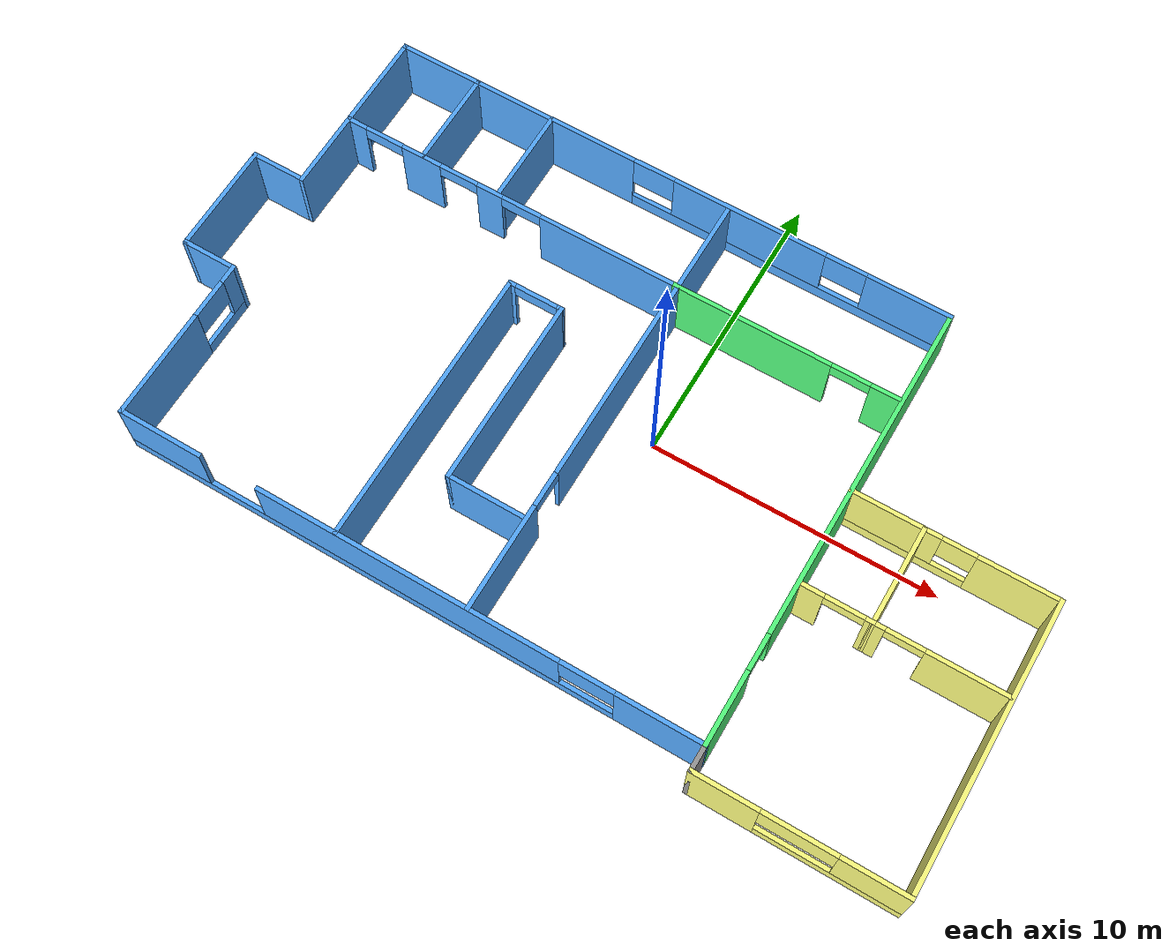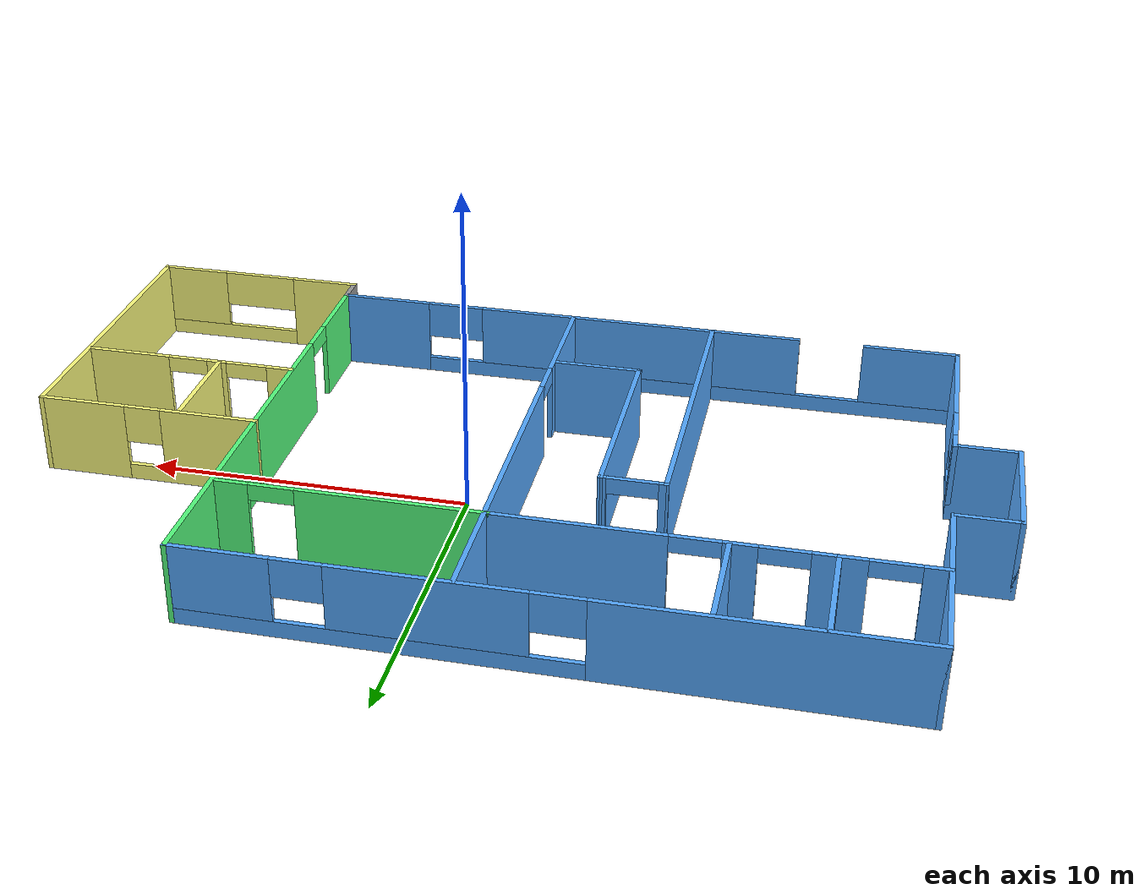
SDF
<?xml version='1.0'?>
<sdf version='1.6'>
  <model name='DetailQ802'>
    <pose frame=''>-1.3775 -0.7635 0 0 -0 0</pose>
    <link name='Wall_0'>
      <pose frame=''>-2.5 8.35 0 0 -0 0</pose>
      <visual name='Wall_0_Visual_0'>
        <pose frame=''>-5.73937 0 1.25 0 -0 0</pose>
        <geometry>
          <box>
            <size>9.02125 0.15 2.5</size>
          </box>
        </geometry>
        <material>
          <script>
            <uri>file://media/materials/scripts/gazebo.material</uri>
            <name>Gazebo/Grey</name>
          </script>
          <ambient>0.333333 0.666667 1 1</ambient>
        </material>
        <meta>
          <layer>0</layer>
        </meta>
      </visual>
      <collision name='Wall_0_Collision_0'>
        <geometry>
          <box>
            <size>9.02125 0.15 2.5</size>
          </box>
        </geometry>
        <pose frame=''>-5.73937 0 1.25 0 -0 0</pose>
      </collision>
      <visual name='Wall_0_Visual_1'>
        <pose frame=''>4.51063 0 0.25 0 -0 0</pose>
        <geometry>
          <box>
            <size>11.4787 0.15 0.5</size>
          </box>
        </geometry>
        <material>
          <script>
            <uri>file://media/materials/scripts/gazebo.material</uri>
            <name>Gazebo/Grey</name>
          </script>
          <ambient>0.333333 0.666667 1 1</ambient>
        </material>
        <meta>
          <layer>0</layer>
        </meta>
      </visual>
      <collision name='Wall_0_Collision_1'>
        <geometry>
          <box>
            <size>11.4787 0.15 0.5</size>
          </box>
        </geometry>
        <pose frame=''>4.51063 0 0.25 0 -0 0</pose>
      </collision>
      <visual name='Wall_0_Visual_2'>
        <pose frame=''>3.03238 0 1.5 0 -0 0</pose>
        <geometry>
          <box>
            <size>5.51925 0.15 2</size>
          </box>
        </geometry>
        <material>
          <script>
            <uri>file://media/materials/scripts/gazebo.material</uri>
            <name>Gazebo/Grey</name>
          </script>
          <ambient>0.333333 0.666667 1 1</ambient>
        </material>
        <meta>
          <layer>0</layer>
        </meta>
      </visual>
      <collision name='Wall_0_Collision_2'>
        <geometry>
          <box>
            <size>5.51925 0.15 2</size>
          </box>
        </geometry>
        <pose frame=''>3.03238 0 1.5 0 -0 0</pose>
      </collision>
      <visual name='Wall_0_Visual_3'>
        <pose frame=''>8.7545 0 1.5 0 -0 0</pose>
        <geometry>
          <box>
            <size>2.991 0.15 2</size>
          </box>
        </geometry>
        <material>
          <script>
            <uri>file://media/materials/scripts/gazebo.material</uri>
            <name>Gazebo/Grey</name>
          </script>
          <ambient>0.333333 0.666667 1 1</ambient>
        </material>
        <meta>
          <layer>0</layer>
        </meta>
      </visual>
      <collision name='Wall_0_Collision_3'>
        <geometry>
          <box>
            <size>2.991 0.15 2</size>
          </box>
        </geometry>
        <pose frame=''>8.7545 0 1.5 0 -0 0</pose>
      </collision>
      <visual name='Wall_0_Visual_4'>
        <pose frame=''>-0.478 0 1.9 0 -0 0</pose>
        <geometry>
          <box>
            <size>1.5015 0.15 1.2</size>
          </box>
        </geometry>
        <material>
          <script>
            <uri>file://media/materials/scripts/gazebo.material</uri>
            <name>Gazebo/Grey</name>
          </script>
          <ambient>0.333333 0.666667 1 1</ambient>
        </material>
        <meta>
          <layer>0</layer>
        </meta>
      </visual>
      <collision name='Wall_0_Collision_4'>
        <geometry>
          <box>
            <size>1.5015 0.15 1.2</size>
          </box>
        </geometry>
        <pose frame=''>-0.478 0 1.9 0 -0 0</pose>
      </collision>
      <visual name='Wall_0_Visual_5'>
        <pose frame=''>6.5255 0 1.9 0 -0 0</pose>
        <geometry>
          <box>
            <size>1.467 0.15 1.2</size>
          </box>
        </geometry>
        <material>
          <script>
            <uri>file://media/materials/scripts/gazebo.material</uri>
            <name>Gazebo/Grey</name>
          </script>
          <ambient>0.333333 0.666667 1 1</ambient>
        </material>
        <meta>
          <layer>0</layer>
        </meta>
      </visual>
      <collision name='Wall_0_Collision_5'>
        <geometry>
          <box>
            <size>1.467 0.15 1.2</size>
          </box>
        </geometry>
        <pose frame=''>6.5255 0 1.9 0 -0 0</pose>
      </collision>
    </link>
    <link name='Wall_11'>
      <collision name='Wall_11_Collision'>
        <geometry>
          <box>
            <size>1 0.15 2.5</size>
          </box>
        </geometry>
        <pose frame=''>0 0 1.25 0 -0 0</pose>
      </collision>
      <visual name='Wall_11_Visual'>
        <pose frame=''>0 0 1.25 0 -0 0</pose>
        <geometry>
          <box>
            <size>1 0.15 2.5</size>
          </box>
        </geometry>
        <material>
          <script>
            <uri>file://media/materials/scripts/gazebo.material</uri>
            <name>Gazebo/Grey</name>
          </script>
          <ambient>1 1 1 1</ambient>
        </material>
        <meta>
          <layer>0</layer>
        </meta>
      </visual>
      <pose frame=''>7.675 -7.925 0 0 0 -1.5708</pose>
    </link>
    <link name='Wall_12'>
      <pose frame=''>11.1 -8.35 0 0 -0 0</pose>
      <visual name='Wall_12_Visual_0'>
        <pose frame=''>-2.365 0 1.25 0 -0 0</pose>
        <geometry>
          <box>
            <size>2.27 0.15 2.5</size>
          </box>
        </geometry>
        <material>
          <script>
            <uri>file://media/materials/scripts/gazebo.material</uri>
            <name>Gazebo/Grey</name>
          </script>
          <ambient>1 1 0.498039 1</ambient>
        </material>
        <meta>
          <layer>0</layer>
        </meta>
      </visual>
      <collision name='Wall_12_Collision_0'>
        <geometry>
          <box>
            <size>2.27 0.15 2.5</size>
          </box>
        </geometry>
        <pose frame=''>-2.365 0 1.25 0 -0 0</pose>
      </collision>
      <visual name='Wall_12_Visual_1'>
        <pose frame=''>1.135 0 0.25 0 -0 0</pose>
        <geometry>
          <box>
            <size>4.73 0.15 0.5</size>
          </box>
        </geometry>
        <material>
          <script>
            <uri>file://media/materials/scripts/gazebo.material</uri>
            <name>Gazebo/Grey</name>
          </script>
          <ambient>1 1 0.498039 1</ambient>
        </material>
        <meta>
          <layer>0</layer>
        </meta>
      </visual>
      <collision name='Wall_12_Collision_1'>
        <geometry>
          <box>
            <size>4.73 0.15 0.5</size>
          </box>
        </geometry>
        <pose frame=''>1.135 0 0.25 0 -0 0</pose>
      </collision>
      <visual name='Wall_12_Visual_2'>
        <pose frame=''>2.363 0 1.5 0 -0 0</pose>
        <geometry>
          <box>
            <size>2.274 0.15 2</size>
          </box>
        </geometry>
        <material>
          <script>
            <uri>file://media/materials/scripts/gazebo.material</uri>
            <name>Gazebo/Grey</name>
          </script>
          <ambient>1 1 0.498039 1</ambient>
        </material>
        <meta>
          <layer>0</layer>
        </meta>
      </visual>
      <collision name='Wall_12_Collision_2'>
        <geometry>
          <box>
            <size>2.274 0.15 2</size>
          </box>
        </geometry>
        <pose frame=''>2.363 0 1.5 0 -0 0</pose>
      </collision>
      <visual name='Wall_12_Visual_3'>
        <pose frame=''>-0.002 0 1.9 0 -0 0</pose>
        <geometry>
          <box>
            <size>2.456 0.15 1.2</size>
          </box>
        </geometry>
        <material>
          <script>
            <uri>file://media/materials/scripts/gazebo.material</uri>
            <name>Gazebo/Grey</name>
          </script>
          <ambient>1 1 0.498039 1</ambient>
        </material>
        <meta>
          <layer>0</layer>
        </meta>
      </visual>
      <collision name='Wall_12_Collision_3'>
        <geometry>
          <box>
            <size>2.456 0.15 1.2</size>
          </box>
        </geometry>
        <pose frame=''>-0.002 0 1.9 0 -0 0</pose>
      </collision>
    </link>
    <link name='Wall_13'>
      <collision name='Wall_13_Collision'>
        <geometry>
          <box>
            <size>10 0.15 2.5</size>
          </box>
        </geometry>
        <pose frame=''>0 0 1.25 0 -0 0</pose>
      </collision>
      <visual name='Wall_13_Visual'>
        <pose frame=''>0 0 1.25 0 -0 0</pose>
        <geometry>
          <box>
            <size>10 0.15 2.5</size>
          </box>
        </geometry>
        <material>
          <script>
            <uri>file://media/materials/scripts/gazebo.material</uri>
            <name>Gazebo/Grey</name>
          </script>
          <ambient>1 1 0.498039 1</ambient>
        </material>
        <meta>
          <layer>0</layer>
        </meta>
      </visual>
      <pose frame=''>14.525 -3.425 0 0 -0 1.5708</pose>
    </link>
    <link name='Wall_14'>
      <pose frame=''>11.1 1.5 0 0 -0 3.14159</pose>
      <visual name='Wall_14_Visual_0'>
        <pose frame=''>-2.11575 0 1.25 0 -0 0</pose>
        <geometry>
          <box>
            <size>2.7685 0.15 2.5</size>
          </box>
        </geometry>
        <material>
          <script>
            <uri>file://media/materials/scripts/gazebo.material</uri>
            <name>Gazebo/Grey</name>
          </script>
          <ambient>1 1 0.498039 1</ambient>
        </material>
        <meta>
          <layer>0</layer>
        </meta>
      </visual>
      <collision name='Wall_14_Collision_0'>
        <geometry>
          <box>
            <size>2.7685 0.15 2.5</size>
          </box>
        </geometry>
        <pose frame=''>-2.11575 0 1.25 0 -0 0</pose>
      </collision>
      <visual name='Wall_14_Visual_1'>
        <pose frame=''>1.38425 0 0.25 0 -0 0</pose>
        <geometry>
          <box>
            <size>4.2315 0.15 0.5</size>
          </box>
        </geometry>
        <material>
          <script>
            <uri>file://media/materials/scripts/gazebo.material</uri>
            <name>Gazebo/Grey</name>
          </script>
          <ambient>1 1 0.498039 1</ambient>
        </material>
        <meta>
          <layer>0</layer>
        </meta>
      </visual>
      <collision name='Wall_14_Collision_1'>
        <geometry>
          <box>
            <size>4.2315 0.15 0.5</size>
          </box>
        </geometry>
        <pose frame=''>1.38425 0 0.25 0 -0 0</pose>
      </collision>
      <visual name='Wall_14_Visual_2'>
        <pose frame=''>1.95675 0 1.5 0 -0 0</pose>
        <geometry>
          <box>
            <size>3.0865 0.15 2</size>
          </box>
        </geometry>
        <material>
          <script>
            <uri>file://media/materials/scripts/gazebo.material</uri>
            <name>Gazebo/Grey</name>
          </script>
          <ambient>1 1 0.498039 1</ambient>
        </material>
        <meta>
          <layer>0</layer>
        </meta>
      </visual>
      <collision name='Wall_14_Collision_2'>
        <geometry>
          <box>
            <size>3.0865 0.15 2</size>
          </box>
        </geometry>
        <pose frame=''>1.95675 0 1.5 0 -0 0</pose>
      </collision>
      <visual name='Wall_14_Visual_3'>
        <pose frame=''>-0.159 0 1.9 0 -0 0</pose>
        <geometry>
          <box>
            <size>1.145 0.15 1.2</size>
          </box>
        </geometry>
        <material>
          <script>
            <uri>file://media/materials/scripts/gazebo.material</uri>
            <name>Gazebo/Grey</name>
          </script>
          <ambient>1 1 0.498039 1</ambient>
        </material>
        <meta>
          <layer>0</layer>
        </meta>
      </visual>
      <collision name='Wall_14_Collision_3'>
        <geometry>
          <box>
            <size>1.145 0.15 1.2</size>
          </box>
        </geometry>
        <pose frame=''>-0.159 0 1.9 0 -0 0</pose>
      </collision>
    </link>
    <link name='Wall_25'>
      <pose frame=''>-0.2065 0.421 0 0 0 -1.5708</pose>
      <visual name='Wall_25_Visual_0'>
        <pose frame=''>-2.53238 0 1.25 0 -0 0</pose>
        <geometry>
          <box>
            <size>10.9352 0.15 2.5</size>
          </box>
        </geometry>
        <material>
          <script>
            <uri>file://media/materials/scripts/gazebo.material</uri>
            <name>Gazebo/Grey</name>
          </script>
          <ambient>0.333333 0.666667 1 1</ambient>
        </material>
        <meta>
          <layer>0</layer>
        </meta>
      </visual>
      <collision name='Wall_25_Collision_0'>
        <geometry>
          <box>
            <size>10.9352 0.15 2.5</size>
          </box>
        </geometry>
        <pose frame=''>-2.53238 0 1.25 0 -0 0</pose>
      </collision>
      <visual name='Wall_25_Visual_1'>
        <pose frame=''>6.08437 0 1.25 0 -0 0</pose>
        <geometry>
          <box>
            <size>3.83125 0.15 2.5</size>
          </box>
        </geometry>
        <material>
          <script>
            <uri>file://media/materials/scripts/gazebo.material</uri>
            <name>Gazebo/Grey</name>
          </script>
          <ambient>0.333333 0.666667 1 1</ambient>
        </material>
        <meta>
          <layer>0</layer>
        </meta>
      </visual>
      <collision name='Wall_25_Collision_1'>
        <geometry>
          <box>
            <size>3.83125 0.15 2.5</size>
          </box>
        </geometry>
        <pose frame=''>6.08437 0 1.25 0 -0 0</pose>
      </collision>
      <visual name='Wall_25_Visual_2'>
        <pose frame=''>3.552 0 2.25 0 -0 0</pose>
        <geometry>
          <box>
            <size>1.2335 0.15 0.5</size>
          </box>
        </geometry>
        <material>
          <script>
            <uri>file://media/materials/scripts/gazebo.material</uri>
            <name>Gazebo/Grey</name>
          </script>
          <ambient>0.333333 0.666667 1 1</ambient>
        </material>
        <meta>
          <layer>0</layer>
        </meta>
      </visual>
      <collision name='Wall_25_Collision_2'>
        <geometry>
          <box>
            <size>1.2335 0.15 0.5</size>
          </box>
        </geometry>
        <pose frame=''>3.552 0 2.25 0 -0 0</pose>
      </collision>
    </link>
    <link name='Wall_3'>
      <pose frame=''>7.675 0.425 0 0 0 -1.5708</pose>
      <visual name='Wall_3_Visual_0'>
        <pose frame=''>-1.92741 0 1.25 0 -0 0</pose>
        <geometry>
          <box>
            <size>12.1452 0.15 2.5</size>
          </box>
        </geometry>
        <material>
          <script>
            <uri>file://media/materials/scripts/gazebo.material</uri>
            <name>Gazebo/Grey</name>
          </script>
          <ambient>0.333333 1 0.498039 1</ambient>
        </material>
        <meta>
          <layer>0</layer>
        </meta>
      </visual>
      <collision name='Wall_3_Collision_0'>
        <geometry>
          <box>
            <size>12.1452 0.15 2.5</size>
          </box>
        </geometry>
        <pose frame=''>-1.92741 0 1.25 0 -0 0</pose>
      </collision>
      <visual name='Wall_3_Visual_1'>
        <pose frame=''>6.70452 0 1.25 0 -0 0</pose>
        <geometry>
          <box>
            <size>2.59097 0.15 2.5</size>
          </box>
        </geometry>
        <material>
          <script>
            <uri>file://media/materials/scripts/gazebo.material</uri>
            <name>Gazebo/Grey</name>
          </script>
          <ambient>0.333333 1 0.498039 1</ambient>
        </material>
        <meta>
          <layer>0</layer>
        </meta>
      </visual>
      <collision name='Wall_3_Collision_1'>
        <geometry>
          <box>
            <size>2.59097 0.15 2.5</size>
          </box>
        </geometry>
        <pose frame=''>6.70452 0 1.25 0 -0 0</pose>
      </collision>
      <visual name='Wall_3_Visual_2'>
        <pose frame=''>4.7771 0 2.25 0 -0 0</pose>
        <geometry>
          <box>
            <size>1.26386 0.15 0.5</size>
          </box>
        </geometry>
        <material>
          <script>
            <uri>file://media/materials/scripts/gazebo.material</uri>
            <name>Gazebo/Grey</name>
          </script>
          <ambient>0.333333 1 0.498039 1</ambient>
        </material>
        <meta>
          <layer>0</layer>
        </meta>
      </visual>
      <collision name='Wall_3_Collision_2'>
        <geometry>
          <box>
            <size>1.26386 0.15 0.5</size>
          </box>
        </geometry>
        <pose frame=''>4.7771 0 2.25 0 -0 0</pose>
      </collision>
    </link>
    <link name='Wall_31'>
      <collision name='Wall_31_Collision'>
        <geometry>
          <box>
            <size>3.5 0.15 2.5</size>
          </box>
        </geometry>
        <pose frame=''>0 0 1.25 0 -0 0</pose>
      </collision>
      <visual name='Wall_31_Visual'>
        <pose frame=''>0 0 1.25 0 -0 0</pose>
        <geometry>
          <box>
            <size>3.5 0.15 2.5</size>
          </box>
        </geometry>
        <material>
          <script>
            <uri>file://media/materials/scripts/gazebo.material</uri>
            <name>Gazebo/Grey</name>
          </script>
          <ambient>0.333333 0.666667 1 1</ambient>
        </material>
        <meta>
          <layer>0</layer>
        </meta>
      </visual>
      <pose frame=''>-9.786 6.6365 0 0 0 -1.5708</pose>
    </link>
    <link name='Wall_33'>
      <pose frame=''>-6.4745 4.942 0 0 -0 0</pose>
      <visual name='Wall_33_Visual_0'>
        <pose frame=''>-5.87113 0 1.25 0 -0 0</pose>
        <geometry>
          <box>
            <size>0.757751 0.15 2.5</size>
          </box>
        </geometry>
        <material>
          <script>
            <uri>file://media/materials/scripts/gazebo.material</uri>
            <name>Gazebo/Grey</name>
          </script>
          <ambient>0.333333 0.666667 1 1</ambient>
        </material>
        <meta>
          <layer>0</layer>
        </meta>
      </visual>
      <collision name='Wall_33_Collision_0'>
        <geometry>
          <box>
            <size>0.757751 0.15 2.5</size>
          </box>
        </geometry>
        <pose frame=''>-5.87113 0 1.25 0 -0 0</pose>
      </collision>
      <visual name='Wall_33_Visual_1'>
        <pose frame=''>-3.34312 0 1.25 0 -0 0</pose>
        <geometry>
          <box>
            <size>1.48625 0.15 2.5</size>
          </box>
        </geometry>
        <material>
          <script>
            <uri>file://media/materials/scripts/gazebo.material</uri>
            <name>Gazebo/Grey</name>
          </script>
          <ambient>0.333333 0.666667 1 1</ambient>
        </material>
        <meta>
          <layer>0</layer>
        </meta>
      </visual>
      <collision name='Wall_33_Collision_1'>
        <geometry>
          <box>
            <size>1.48625 0.15 2.5</size>
          </box>
        </geometry>
        <pose frame=''>-3.34312 0 1.25 0 -0 0</pose>
      </collision>
      <visual name='Wall_33_Visual_2'>
        <pose frame=''>-0.715375 0 1.25 0 -0 0</pose>
        <geometry>
          <box>
            <size>0.957249 0.15 2.5</size>
          </box>
        </geometry>
        <material>
          <script>
            <uri>file://media/materials/scripts/gazebo.material</uri>
            <name>Gazebo/Grey</name>
          </script>
          <ambient>0.333333 0.666667 1 1</ambient>
        </material>
        <meta>
          <layer>0</layer>
        </meta>
      </visual>
      <collision name='Wall_33_Collision_2'>
        <geometry>
          <box>
            <size>0.957249 0.15 2.5</size>
          </box>
        </geometry>
        <pose frame=''>-0.715375 0 1.25 0 -0 0</pose>
      </collision>
      <visual name='Wall_33_Visual_3'>
        <pose frame=''>3.72688 0 1.25 0 -0 0</pose>
        <geometry>
          <box>
            <size>5.04625 0.15 2.5</size>
          </box>
        </geometry>
        <material>
          <script>
            <uri>file://media/materials/scripts/gazebo.material</uri>
            <name>Gazebo/Grey</name>
          </script>
          <ambient>0.333333 0.666667 1 1</ambient>
        </material>
        <meta>
          <layer>0</layer>
        </meta>
      </visual>
      <collision name='Wall_33_Collision_3'>
        <geometry>
          <box>
            <size>5.04625 0.15 2.5</size>
          </box>
        </geometry>
        <pose frame=''>3.72688 0 1.25 0 -0 0</pose>
      </collision>
      <visual name='Wall_33_Visual_4'>
        <pose frame=''>-4.78925 0 2.25 0 -0 0</pose>
        <geometry>
          <box>
            <size>1.406 0.15 0.5</size>
          </box>
        </geometry>
        <material>
          <script>
            <uri>file://media/materials/scripts/gazebo.material</uri>
            <name>Gazebo/Grey</name>
          </script>
          <ambient>0.333333 0.666667 1 1</ambient>
        </material>
        <meta>
          <layer>0</layer>
        </meta>
      </visual>
      <collision name='Wall_33_Collision_4'>
        <geometry>
          <box>
            <size>1.406 0.15 0.5</size>
          </box>
        </geometry>
        <pose frame=''>-4.78925 0 2.25 0 -0 0</pose>
      </collision>
      <visual name='Wall_33_Visual_5'>
        <pose frame=''>-1.897 0 2.25 0 -0 0</pose>
        <geometry>
          <box>
            <size>1.406 0.15 0.5</size>
          </box>
        </geometry>
        <material>
          <script>
            <uri>file://media/materials/scripts/gazebo.material</uri>
            <name>Gazebo/Grey</name>
          </script>
          <ambient>0.333333 0.666667 1 1</ambient>
        </material>
        <meta>
          <layer>0</layer>
        </meta>
      </visual>
      <collision name='Wall_33_Collision_5'>
        <geometry>
          <box>
            <size>1.406 0.15 0.5</size>
          </box>
        </geometry>
        <pose frame=''>-1.897 0 2.25 0 -0 0</pose>
      </collision>
      <visual name='Wall_33_Visual_6'>
        <pose frame=''>0.4835 0 2.25 0 -0 0</pose>
        <geometry>
          <box>
            <size>1.4405 0.15 0.5</size>
          </box>
        </geometry>
        <material>
          <script>
            <uri>file://media/materials/scripts/gazebo.material</uri>
            <name>Gazebo/Grey</name>
          </script>
          <ambient>0.333333 0.666667 1 1</ambient>
        </material>
        <meta>
          <layer>0</layer>
        </meta>
      </visual>
      <collision name='Wall_33_Collision_6'>
        <geometry>
          <box>
            <size>1.4405 0.15 0.5</size>
          </box>
        </geometry>
        <pose frame=''>0.4835 0 2.25 0 -0 0</pose>
      </collision>
    </link>
    <link name='Wall_37'>
      <collision name='Wall_37_Collision'>
        <geometry>
          <box>
            <size>3.5 0.15 2.5</size>
          </box>
        </geometry>
        <pose frame=''>0 0 1.25 0 -0 0</pose>
      </collision>
      <visual name='Wall_37_Visual'>
        <pose frame=''>0 0 1.25 0 -0 0</pose>
        <geometry>
          <box>
            <size>3.5 0.15 2.5</size>
          </box>
        </geometry>
        <material>
          <script>
            <uri>file://media/materials/scripts/gazebo.material</uri>
            <name>Gazebo/Grey</name>
          </script>
          <ambient>0.333333 0.666667 1 1</ambient>
        </material>
        <meta>
          <layer>0</layer>
        </meta>
      </visual>
      <pose frame=''>-6.8995 6.648 0 0 0 -1.5708</pose>
    </link>
    <link name='Wall_39'>
      <pose frame=''>3.6255 4.942 0 0 -0 0</pose>
      <visual name='Wall_39_Visual_0'>
        <pose frame=''>-1.19125 0 1.25 0 -0 0</pose>
        <geometry>
          <box>
            <size>5.6175 0.15 2.5</size>
          </box>
        </geometry>
        <material>
          <script>
            <uri>file://media/materials/scripts/gazebo.material</uri>
            <name>Gazebo/Grey</name>
          </script>
          <ambient>0.333333 1 0.498039 1</ambient>
        </material>
        <meta>
          <layer>0</layer>
        </meta>
      </visual>
      <collision name='Wall_39_Collision_0'>
        <geometry>
          <box>
            <size>5.6175 0.15 2.5</size>
          </box>
        </geometry>
        <pose frame=''>-1.19125 0 1.25 0 -0 0</pose>
      </collision>
      <visual name='Wall_39_Visual_1'>
        <pose frame=''>3.48875 0 1.25 0 -0 0</pose>
        <geometry>
          <box>
            <size>1.0225 0.15 2.5</size>
          </box>
        </geometry>
        <material>
          <script>
            <uri>file://media/materials/scripts/gazebo.material</uri>
            <name>Gazebo/Grey</name>
          </script>
          <ambient>0.333333 1 0.498039 1</ambient>
        </material>
        <meta>
          <layer>0</layer>
        </meta>
      </visual>
      <collision name='Wall_39_Collision_1'>
        <geometry>
          <box>
            <size>1.0225 0.15 2.5</size>
          </box>
        </geometry>
        <pose frame=''>3.48875 0 1.25 0 -0 0</pose>
      </collision>
      <visual name='Wall_39_Visual_2'>
        <pose frame=''>2.2975 0 2.25 0 -0 0</pose>
        <geometry>
          <box>
            <size>1.36 0.15 0.5</size>
          </box>
        </geometry>
        <material>
          <script>
            <uri>file://media/materials/scripts/gazebo.material</uri>
            <name>Gazebo/Grey</name>
          </script>
          <ambient>0.333333 1 0.498039 1</ambient>
        </material>
        <meta>
          <layer>0</layer>
        </meta>
      </visual>
      <collision name='Wall_39_Collision_2'>
        <geometry>
          <box>
            <size>1.36 0.15 0.5</size>
          </box>
        </geometry>
        <pose frame=''>2.2975 0 2.25 0 -0 0</pose>
      </collision>
    </link>
    <link name='Wall_4'>
      <pose frame=''>-2.5 -7.50575 0 0 0 -3.14103</pose>
      <visual name='Wall_4_Visual_0'>
        <pose frame=''>-8.7479 0 1.25 0 -0 0</pose>
        <geometry>
          <box>
            <size>3.00459 0.15 2.5</size>
          </box>
        </geometry>
        <material>
          <script>
            <uri>file://media/materials/scripts/gazebo.material</uri>
            <name>Gazebo/Grey</name>
          </script>
          <ambient>0.333333 0.666667 1 1</ambient>
        </material>
        <meta>
          <layer>0</layer>
        </meta>
      </visual>
      <collision name='Wall_4_Collision_0'>
        <geometry>
          <box>
            <size>3.00459 0.15 2.5</size>
          </box>
        </geometry>
        <pose frame=''>-8.7479 0 1.25 0 -0 0</pose>
      </collision>
      <visual name='Wall_4_Visual_1'>
        <pose frame=''>1.50229 0 0.25 0 -0 0</pose>
        <geometry>
          <box>
            <size>17.4958 0.15 0.5</size>
          </box>
        </geometry>
        <material>
          <script>
            <uri>file://media/materials/scripts/gazebo.material</uri>
            <name>Gazebo/Grey</name>
          </script>
          <ambient>0.333333 0.666667 1 1</ambient>
        </material>
        <meta>
          <layer>0</layer>
        </meta>
      </visual>
      <collision name='Wall_4_Collision_1'>
        <geometry>
          <box>
            <size>17.4958 0.15 0.5</size>
          </box>
        </geometry>
        <pose frame=''>1.50229 0 0.25 0 -0 0</pose>
      </collision>
      <visual name='Wall_4_Visual_2'>
        <pose frame=''>-0.109419 0 1.5 0 -0 0</pose>
        <geometry>
          <box>
            <size>10.579 0.15 2</size>
          </box>
        </geometry>
        <material>
          <script>
            <uri>file://media/materials/scripts/gazebo.material</uri>
            <name>Gazebo/Grey</name>
          </script>
          <ambient>0.333333 0.666667 1 1</ambient>
        </material>
        <meta>
          <layer>0</layer>
        </meta>
      </visual>
      <collision name='Wall_4_Collision_2'>
        <geometry>
          <box>
            <size>10.579 0.15 2</size>
          </box>
        </geometry>
        <pose frame=''>-0.109419 0 1.5 0 -0 0</pose>
      </collision>
      <visual name='Wall_4_Visual_3'>
        <pose frame=''>8.72814 0 1.5 0 -0 0</pose>
        <geometry>
          <box>
            <size>3.04411 0.15 2</size>
          </box>
        </geometry>
        <material>
          <script>
            <uri>file://media/materials/scripts/gazebo.material</uri>
            <name>Gazebo/Grey</name>
          </script>
          <ambient>0.333333 0.666667 1 1</ambient>
        </material>
        <meta>
          <layer>0</layer>
        </meta>
      </visual>
      <collision name='Wall_4_Collision_3'>
        <geometry>
          <box>
            <size>3.04411 0.15 2</size>
          </box>
        </geometry>
        <pose frame=''>8.72814 0 1.5 0 -0 0</pose>
      </collision>
      <visual name='Wall_4_Visual_4'>
        <pose frame=''>-6.32226 0 1.9 0 -0 0</pose>
        <geometry>
          <box>
            <size>1.8467 0.15 1.2</size>
          </box>
        </geometry>
        <material>
          <script>
            <uri>file://media/materials/scripts/gazebo.material</uri>
            <name>Gazebo/Grey</name>
          </script>
          <ambient>0.333333 0.666667 1 1</ambient>
        </material>
        <meta>
          <layer>0</layer>
        </meta>
      </visual>
      <collision name='Wall_4_Collision_4'>
        <geometry>
          <box>
            <size>1.8467 0.15 1.2</size>
          </box>
        </geometry>
        <pose frame=''>-6.32226 0 1.9 0 -0 0</pose>
      </collision>
      <visual name='Wall_4_Visual_5'>
        <pose frame=''>5.18008 0 1.9 0 -0 0</pose>
        <geometry>
          <box>
            <size>0 0.15 1.2</size>
          </box>
        </geometry>
        <material>
          <script>
            <uri>file://media/materials/scripts/gazebo.material</uri>
            <name>Gazebo/Grey</name>
          </script>
          <ambient>0.333333 0.666667 1 1</ambient>
        </material>
        <meta>
          <layer>0</layer>
        </meta>
      </visual>
      <collision name='Wall_4_Collision_5'>
        <geometry>
          <box>
            <size>0 0.15 1.2</size>
          </box>
        </geometry>
        <pose frame=''>5.18008 0 1.9 0 -0 0</pose>
      </collision>
    </link>
    <link name='Wall_45'>
      <collision name='Wall_45_Collision'>
        <geometry>
          <box>
            <size>10 0.15 2.5</size>
          </box>
        </geometry>
        <pose frame=''>0 0 1.25 0 -0 0</pose>
      </collision>
      <visual name='Wall_45_Visual'>
        <pose frame=''>0 0 1.25 0 -0 0</pose>
        <geometry>
          <box>
            <size>10 0.15 2.5</size>
          </box>
        </geometry>
        <material>
          <script>
            <uri>file://media/materials/scripts/gazebo.material</uri>
            <name>Gazebo/Grey</name>
          </script>
          <ambient>0.333333 0.666667 1 1</ambient>
        </material>
        <meta>
          <layer>0</layer>
        </meta>
      </visual>
      <pose frame=''>-4.8295 -2.5645 0 0 -0 1.5708</pose>
    </link>
    <link name='Wall_47'>
      <collision name='Wall_47_Collision'>
        <geometry>
          <box>
            <size>6.75 0.15 2.5</size>
          </box>
        </geometry>
        <pose frame=''>0 0 1.25 0 -0 0</pose>
      </collision>
      <visual name='Wall_47_Visual'>
        <pose frame=''>0 0 1.25 0 -0 0</pose>
        <geometry>
          <box>
            <size>6.75 0.15 2.5</size>
          </box>
        </geometry>
        <material>
          <script>
            <uri>file://media/materials/scripts/gazebo.material</uri>
            <name>Gazebo/Grey</name>
          </script>
          <ambient>0.333333 0.666667 1 1</ambient>
        </material>
        <meta>
          <layer>0</layer>
        </meta>
      </visual>
      <pose frame=''>-2.9435 -0.934 0 0 0 -1.5708</pose>
    </link>
    <link name='Wall_5'>
      <pose frame=''>-12.675 -4.575 0 0 -0 1.5708</pose>
      <visual name='Wall_5_Visual_0'>
        <pose frame=''>-1.04412 0 1.25 0 -0 0</pose>
        <geometry>
          <box>
            <size>3.91177 0.15 2.5</size>
          </box>
        </geometry>
        <material>
          <script>
            <uri>file://media/materials/scripts/gazebo.material</uri>
            <name>Gazebo/Grey</name>
          </script>
          <ambient>0.333333 0.666667 1 1</ambient>
        </material>
        <meta>
          <layer>0</layer>
        </meta>
      </visual>
      <collision name='Wall_5_Collision_0'>
        <geometry>
          <box>
            <size>3.91177 0.15 2.5</size>
          </box>
        </geometry>
        <pose frame=''>-1.04412 0 1.25 0 -0 0</pose>
      </collision>
      <visual name='Wall_5_Visual_1'>
        <pose frame=''>1.95588 0 0.25 0 -0 0</pose>
        <geometry>
          <box>
            <size>2.08823 0.15 0.5</size>
          </box>
        </geometry>
        <material>
          <script>
            <uri>file://media/materials/scripts/gazebo.material</uri>
            <name>Gazebo/Grey</name>
          </script>
          <ambient>0.333333 0.666667 1 1</ambient>
        </material>
        <meta>
          <layer>0</layer>
        </meta>
      </visual>
      <collision name='Wall_5_Collision_1'>
        <geometry>
          <box>
            <size>2.08823 0.15 0.5</size>
          </box>
        </geometry>
        <pose frame=''>1.95588 0 0.25 0 -0 0</pose>
      </collision>
      <visual name='Wall_5_Visual_2'>
        <pose frame=''>2.64912 0 1.5 0 -0 0</pose>
        <geometry>
          <box>
            <size>0.701768 0.15 2</size>
          </box>
        </geometry>
        <material>
          <script>
            <uri>file://media/materials/scripts/gazebo.material</uri>
            <name>Gazebo/Grey</name>
          </script>
          <ambient>0.333333 0.666667 1 1</ambient>
        </material>
        <meta>
          <layer>0</layer>
        </meta>
      </visual>
      <collision name='Wall_5_Collision_2'>
        <geometry>
          <box>
            <size>0.701768 0.15 2</size>
          </box>
        </geometry>
        <pose frame=''>2.64912 0 1.5 0 -0 0</pose>
      </collision>
      <visual name='Wall_5_Visual_3'>
        <pose frame=''>1.605 0 1.9 0 -0 0</pose>
        <geometry>
          <box>
            <size>1.38646 0.15 1.2</size>
          </box>
        </geometry>
        <material>
          <script>
            <uri>file://media/materials/scripts/gazebo.material</uri>
            <name>Gazebo/Grey</name>
          </script>
          <ambient>0.333333 0.666667 1 1</ambient>
        </material>
        <meta>
          <layer>0</layer>
        </meta>
      </visual>
      <collision name='Wall_5_Collision_3'>
        <geometry>
          <box>
            <size>1.38646 0.15 1.2</size>
          </box>
        </geometry>
        <pose frame=''>1.605 0 1.9 0 -0 0</pose>
      </collision>
    </link>
    <link name='Wall_50'>
      <collision name='Wall_50_Collision'>
        <geometry>
          <box>
            <size>2.75 0.15 2.5</size>
          </box>
        </geometry>
        <pose frame=''>0 0 1.25 0 -0 0</pose>
      </collision>
      <visual name='Wall_50_Visual'>
        <pose frame=''>0 0 1.25 0 -0 0</pose>
        <geometry>
          <box>
            <size>2.75 0.15 2.5</size>
          </box>
        </geometry>
        <material>
          <script>
            <uri>file://media/materials/scripts/gazebo.material</uri>
            <name>Gazebo/Grey</name>
          </script>
          <ambient>0.333333 0.666667 1 1</ambient>
        </material>
        <meta>
          <layer>0</layer>
        </meta>
      </visual>
      <pose frame=''>-1.6435 -4.234 0 0 -0 0</pose>
    </link>
    <link name='Wall_54'>
      <collision name='Wall_54_Collision'>
        <geometry>
          <box>
            <size>3.5 0.15 2.5</size>
          </box>
        </geometry>
        <pose frame=''>0 0 1.25 0 -0 0</pose>
      </collision>
      <visual name='Wall_54_Visual'>
        <pose frame=''>0 0 1.25 0 -0 0</pose>
        <geometry>
          <box>
            <size>3.5 0.15 2.5</size>
          </box>
        </geometry>
        <material>
          <script>
            <uri>file://media/materials/scripts/gazebo.material</uri>
            <name>Gazebo/Grey</name>
          </script>
          <ambient>1 1 0.498039 1</ambient>
        </material>
        <meta>
          <layer>0</layer>
        </meta>
      </visual>
      <pose frame=''>10.0975 -0.206 0 0 0 -1.5708</pose>
    </link>
    <link name='Wall_56'>
      <pose frame=''>12.2725 -1.881 0 0 -0 0</pose>
      <visual name='Wall_56_Visual_0'>
        <pose frame=''>-2.01082 0 1.25 0 -0 0</pose>
        <geometry>
          <box>
            <size>0.478365 0.15 2.5</size>
          </box>
        </geometry>
        <material>
          <script>
            <uri>file://media/materials/scripts/gazebo.material</uri>
            <name>Gazebo/Grey</name>
          </script>
          <ambient>1 1 0.498039 1</ambient>
        </material>
        <meta>
          <layer>0</layer>
        </meta>
      </visual>
      <collision name='Wall_56_Collision_0'>
        <geometry>
          <box>
            <size>0.478365 0.15 2.5</size>
          </box>
        </geometry>
        <pose frame=''>-2.01082 0 1.25 0 -0 0</pose>
      </collision>
      <visual name='Wall_56_Visual_1'>
        <pose frame=''>0.878933 0 1.25 0 -0 0</pose>
        <geometry>
          <box>
            <size>2.74214 0.15 2.5</size>
          </box>
        </geometry>
        <material>
          <script>
            <uri>file://media/materials/scripts/gazebo.material</uri>
            <name>Gazebo/Grey</name>
          </script>
          <ambient>1 1 0.498039 1</ambient>
        </material>
        <meta>
          <layer>0</layer>
        </meta>
      </visual>
      <collision name='Wall_56_Collision_1'>
        <geometry>
          <box>
            <size>2.74214 0.15 2.5</size>
          </box>
        </geometry>
        <pose frame=''>0.878933 0 1.25 0 -0 0</pose>
      </collision>
      <visual name='Wall_56_Visual_2'>
        <pose frame=''>-1.13189 0 2.25 0 -0 0</pose>
        <geometry>
          <box>
            <size>1.2795 0.15 0.5</size>
          </box>
        </geometry>
        <material>
          <script>
            <uri>file://media/materials/scripts/gazebo.material</uri>
            <name>Gazebo/Grey</name>
          </script>
          <ambient>1 1 0.498039 1</ambient>
        </material>
        <meta>
          <layer>0</layer>
        </meta>
      </visual>
      <collision name='Wall_56_Collision_2'>
        <geometry>
          <box>
            <size>1.2795 0.15 0.5</size>
          </box>
        </geometry>
        <pose frame=''>-1.13189 0 2.25 0 -0 0</pose>
      </collision>
    </link>
    <link name='Wall_58'>
      <pose frame=''>8.90725 -1.87925 0 0 0 -0.00147</pose>
      <visual name='Wall_58_Visual_0'>
        <pose frame=''>-0.828784 0 1.25 0 -0 0</pose>
        <geometry>
          <box>
            <size>0.872935 0.15 2.5</size>
          </box>
        </geometry>
        <material>
          <script>
            <uri>file://media/materials/scripts/gazebo.material</uri>
            <name>Gazebo/Grey</name>
          </script>
          <ambient>1 1 0.498039 1</ambient>
        </material>
        <meta>
          <layer>0</layer>
        </meta>
      </visual>
      <collision name='Wall_58_Collision_0'>
        <geometry>
          <box>
            <size>0.872935 0.15 2.5</size>
          </box>
        </geometry>
        <pose frame=''>-0.828784 0 1.25 0 -0 0</pose>
      </collision>
      <visual name='Wall_58_Visual_1'>
        <pose frame=''>1.11065 0 1.25 0 -0 0</pose>
        <geometry>
          <box>
            <size>0.309204 0.15 2.5</size>
          </box>
        </geometry>
        <material>
          <script>
            <uri>file://media/materials/scripts/gazebo.material</uri>
            <name>Gazebo/Grey</name>
          </script>
          <ambient>1 1 0.498039 1</ambient>
        </material>
        <meta>
          <layer>0</layer>
        </meta>
      </visual>
      <collision name='Wall_58_Collision_1'>
        <geometry>
          <box>
            <size>0.309204 0.15 2.5</size>
          </box>
        </geometry>
        <pose frame=''>1.11065 0 1.25 0 -0 0</pose>
      </collision>
      <visual name='Wall_58_Visual_2'>
        <pose frame=''>0.281865 0 2.25 0 -0 0</pose>
        <geometry>
          <box>
            <size>1.34836 0.15 0.5</size>
          </box>
        </geometry>
        <material>
          <script>
            <uri>file://media/materials/scripts/gazebo.material</uri>
            <name>Gazebo/Grey</name>
          </script>
          <ambient>1 1 0.498039 1</ambient>
        </material>
        <meta>
          <layer>0</layer>
        </meta>
      </visual>
      <collision name='Wall_58_Collision_2'>
        <geometry>
          <box>
            <size>1.34836 0.15 0.5</size>
          </box>
        </geometry>
        <pose frame=''>0.281865 0 2.25 0 -0 0</pose>
      </collision>
    </link>
    <link name='Wall_6'>
      <collision name='Wall_6_Collision'>
        <geometry>
          <box>
            <size>2 0.15 2.5</size>
          </box>
        </geometry>
        <pose frame=''>0 0 1.25 0 -0 0</pose>
      </collision>
      <visual name='Wall_6_Visual'>
        <pose frame=''>0 0 1.25 0 -0 0</pose>
        <geometry>
          <box>
            <size>2 0.15 2.5</size>
          </box>
        </geometry>
        <material>
          <script>
            <uri>file://media/materials/scripts/gazebo.material</uri>
            <name>Gazebo/Grey</name>
          </script>
          <ambient>0.333333 0.666667 1 1</ambient>
        </material>
        <meta>
          <layer>0</layer>
        </meta>
      </visual>
      <pose frame=''>-13.6 -1.65 0 0 -0 3.14159</pose>
    </link>
    <link name='Wall_60'>
      <pose frame=''>-3.8865 2.36325 0 0 -0 0.002916</pose>
      <visual name='Wall_60_Visual_0'>
        <pose frame=''>-0.873344 0 1.25 0 -0 0</pose>
        <geometry>
          <box>
            <size>0.289319 0.15 2.5</size>
          </box>
        </geometry>
        <material>
          <script>
            <uri>file://media/materials/scripts/gazebo.material</uri>
            <name>Gazebo/Grey</name>
          </script>
          <ambient>0.333333 0.666667 1 1</ambient>
        </material>
        <meta>
          <layer>0</layer>
        </meta>
      </visual>
      <collision name='Wall_60_Collision_0'>
        <geometry>
          <box>
            <size>0.289319 0.15 2.5</size>
          </box>
        </geometry>
        <pose frame=''>-0.873344 0 1.25 0 -0 0</pose>
      </collision>
      <visual name='Wall_60_Visual_1'>
        <pose frame=''>0.896503 0 1.25 0 -0 0</pose>
        <geometry>
          <box>
            <size>0.243003 0.15 2.5</size>
          </box>
        </geometry>
        <material>
          <script>
            <uri>file://media/materials/scripts/gazebo.material</uri>
            <name>Gazebo/Grey</name>
          </script>
          <ambient>0.333333 0.666667 1 1</ambient>
        </material>
        <meta>
          <layer>0</layer>
        </meta>
      </visual>
      <collision name='Wall_60_Collision_1'>
        <geometry>
          <box>
            <size>0.243003 0.15 2.5</size>
          </box>
        </geometry>
        <pose frame=''>0.896503 0 1.25 0 -0 0</pose>
      </collision>
      <visual name='Wall_60_Visual_2'>
        <pose frame=''>0.023158 0 2.25 0 -0 0</pose>
        <geometry>
          <box>
            <size>1.50369 0.15 0.5</size>
          </box>
        </geometry>
        <material>
          <script>
            <uri>file://media/materials/scripts/gazebo.material</uri>
            <name>Gazebo/Grey</name>
          </script>
          <ambient>0.333333 0.666667 1 1</ambient>
        </material>
        <meta>
          <layer>0</layer>
        </meta>
      </visual>
      <collision name='Wall_60_Collision_2'>
        <geometry>
          <box>
            <size>1.50369 0.15 0.5</size>
          </box>
        </geometry>
        <pose frame=''>0.023158 0 2.25 0 -0 0</pose>
      </collision>
    </link>
    <link name='Wall_7'>
      <collision name='Wall_7_Collision'>
        <geometry>
          <box>
            <size>4 0.15 2.5</size>
          </box>
        </geometry>
        <pose frame=''>0 0 1.25 0 -0 0</pose>
      </collision>
      <visual name='Wall_7_Visual'>
        <pose frame=''>0 0 1.25 0 -0 0</pose>
        <geometry>
          <box>
            <size>4 0.15 2.5</size>
          </box>
        </geometry>
        <material>
          <script>
            <uri>file://media/materials/scripts/gazebo.material</uri>
            <name>Gazebo/Grey</name>
          </script>
          <ambient>0.333333 0.666667 1 1</ambient>
        </material>
        <meta>
          <layer>0</layer>
        </meta>
      </visual>
      <pose frame=''>-14.525 0.275 0 0 -0 1.5708</pose>
    </link>
    <link name='Wall_8'>
      <collision name='Wall_8_Collision'>
        <geometry>
          <box>
            <size>2 0.15 2.5</size>
          </box>
        </geometry>
        <pose frame=''>0 0 1.25 0 -0 0</pose>
      </collision>
      <visual name='Wall_8_Visual'>
        <pose frame=''>0 0 1.25 0 -0 0</pose>
        <geometry>
          <box>
            <size>2 0.15 2.5</size>
          </box>
        </geometry>
        <material>
          <script>
            <uri>file://media/materials/scripts/gazebo.material</uri>
            <name>Gazebo/Grey</name>
          </script>
          <ambient>0.333333 0.666667 1 1</ambient>
        </material>
        <meta>
          <layer>0</layer>
        </meta>
      </visual>
      <pose frame=''>-13.6 2.2 0 0 -0 0</pose>
    </link>
    <link name='Wall_9'>
      <collision name='Wall_9_Collision'>
        <geometry>
          <box>
            <size>6.3 0.15 2.5</size>
          </box>
        </geometry>
        <pose frame=''>0 0 1.25 0 -0 0</pose>
      </collision>
      <visual name='Wall_9_Visual'>
        <pose frame=''>0 0 1.25 0 -0 0</pose>
        <geometry>
          <box>
            <size>6.3 0.15 2.5</size>
          </box>
        </geometry>
        <material>
          <script>
            <uri>file://media/materials/scripts/gazebo.material</uri>
            <name>Gazebo/Grey</name>
          </script>
          <ambient>0.333333 0.666667 1 1</ambient>
        </material>
        <meta>
          <layer>0</layer>
        </meta>
      </visual>
      <pose frame=''>-12.675 5.275 0 0 -0 1.5708</pose>
    </link>
    <static>1</static>
  </model>
</sdf>
